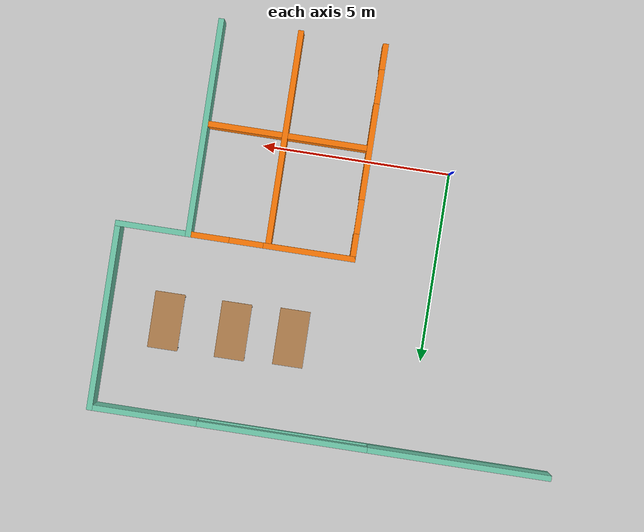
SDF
<sdf version="1.6">
 <world name="default">
  <model name="ground_plane">
   <static>1</static>
   <link name="link">
    <collision name="collision">
     <geometry><plane><normal>0 0 1</normal><size>100 100</size></plane></geometry>
     <surface><friction><ode><mu>100</mu><mu2>50</mu2></ode></friction></surface>
    </collision>
    <visual name="visual">
     <cast_shadows>0</cast_shadows>
     <geometry><plane><normal>0 0 1</normal><size>100 100</size></plane></geometry>
     <material>
      <script><uri>file://media/materials/scripts/gazebo.material</uri><name>Gazebo/Grey</name></script>
     </material>
    </visual>
   </link>
  </model>
  <model name="Building">
   <link name="Wall_11">
    <pose>5.14158 0.068309 0 0 -0 1.5708</pose>
    <visual name="Wall_11_Visual">
     <pose>0 0 1.25 0 -0 0</pose>
     <geometry><box><size>5.75 0.15 2.5</size></box></geometry>
     <material>
      <script><uri>file://media/materials/scripts/gazebo.material</uri><name>Gazebo/Grey</name></script>
      <ambient>0.435294 0.796078 0.67451 1</ambient>
      <shader type="pixel"/>
      <diffuse>0.7 0.7 0.7 1</diffuse>
      <specular>0.01 0.01 0.01 1</specular>
      <emissive>0 0 0 1</emissive>
     </material>
     <meta><layer>0</layer></meta>
    </visual>
    <collision name="Wall_11_Collision">
     <pose>0 0 1.25 0 -0 0</pose>
     <geometry><box><size>5.75 0.15 2.5</size></box></geometry>
     <surface>
      <friction>
       <ode><mu>1</mu><mu2>1</mu2><fdir1>0 0 0</fdir1><slip1>0</slip1><slip2>0</slip2></ode>
       <torsional>
        <coefficient>1</coefficient>
        <patch_radius>0</patch_radius>
        <surface_radius>0</surface_radius>
        <use_patch_radius>1</use_patch_radius>
        <ode><slip>0</slip></ode>
       </torsional>
      </friction>
      <bounce><restitution_coefficient>0</restitution_coefficient><threshold>1e+06</threshold></bounce>
      <contact>
       <collide_without_contact>0</collide_without_contact>
       <collide_without_contact_bitmask>1</collide_without_contact_bitmask>
       <collide_bitmask>1</collide_bitmask>
       <ode>
        <soft_cfm>0</soft_cfm>
        <soft_erp>0.2</soft_erp>
        <kp>1e+13</kp>
        <kd>1</kd>
        <max_vel>0.01</max_vel>
        <min_depth>0</min_depth>
       </ode>
       <bullet>
        <split_impulse>1</split_impulse>
        <split_impulse_penetration_threshold>-0.01</split_impulse_penetration_threshold>
        <soft_cfm>0</soft_cfm>
        <soft_erp>0.2</soft_erp>
        <kp>1e+13</kp>
        <kd>1</kd>
       </bullet>
      </contact>
     </surface>
    </collision>
   </link>
   <link name="Wall_12">
    <pose>6.06658 2.86831 0 0 -0 0</pose>
    <visual name="Wall_12_Visual">
     <pose>0 0 1.25 0 -0 0</pose>
     <geometry><box><size>2 0.15 2.5</size></box></geometry>
     <material>
      <script><uri>file://media/materials/scripts/gazebo.material</uri><name>Gazebo/Grey</name></script>
      <ambient>0.435294 0.796078 0.67451 1</ambient>
      <shader type="pixel"/>
      <diffuse>0.7 0.7 0.7 1</diffuse>
      <specular>0.01 0.01 0.01 1</specular>
      <emissive>0 0 0 1</emissive>
     </material>
     <meta><layer>0</layer></meta>
    </visual>
    <collision name="Wall_12_Collision">
     <pose>0 0 1.25 0 -0 0</pose>
     <geometry><box><size>2 0.15 2.5</size></box></geometry>
     <surface>
      <friction>
       <ode><mu>1</mu><mu2>1</mu2><fdir1>0 0 0</fdir1><slip1>0</slip1><slip2>0</slip2></ode>
       <torsional>
        <coefficient>1</coefficient>
        <patch_radius>0</patch_radius>
        <surface_radius>0</surface_radius>
        <use_patch_radius>1</use_patch_radius>
        <ode><slip>0</slip></ode>
       </torsional>
      </friction>
      <bounce><restitution_coefficient>0</restitution_coefficient><threshold>1e+06</threshold></bounce>
      <contact>
       <collide_without_contact>0</collide_without_contact>
       <collide_without_contact_bitmask>1</collide_without_contact_bitmask>
       <collide_bitmask>1</collide_bitmask>
       <ode>
        <soft_cfm>0</soft_cfm>
        <soft_erp>0.2</soft_erp>
        <kp>1e+13</kp>
        <kd>1</kd>
        <max_vel>0.01</max_vel>
        <min_depth>0</min_depth>
       </ode>
       <bullet>
        <split_impulse>1</split_impulse>
        <split_impulse_penetration_threshold>-0.01</split_impulse_penetration_threshold>
        <soft_cfm>0</soft_cfm>
        <soft_erp>0.2</soft_erp>
        <kp>1e+13</kp>
        <kd>1</kd>
       </bullet>
      </contact>
     </surface>
    </collision>
   </link>
   <link name="Wall_13">
    <pose>6.99158 5.29331 0 0 -0 1.5708</pose>
    <visual name="Wall_13_Visual">
     <pose>0 0 1.25 0 -0 0</pose>
     <geometry><box><size>5 0.15 2.5</size></box></geometry>
     <material>
      <script><uri>file://media/materials/scripts/gazebo.material</uri><name>Gazebo/Grey</name></script>
      <ambient>0.435294 0.796078 0.67451 1</ambient>
      <shader type="pixel"/>
      <diffuse>0.7 0.7 0.7 1</diffuse>
      <specular>0.01 0.01 0.01 1</specular>
      <emissive>0 0 0 1</emissive>
     </material>
     <meta><layer>0</layer></meta>
    </visual>
    <collision name="Wall_13_Collision">
     <pose>0 0 1.25 0 -0 0</pose>
     <geometry><box><size>5 0.15 2.5</size></box></geometry>
     <surface>
      <friction>
       <ode><mu>1</mu><mu2>1</mu2><fdir1>0 0 0</fdir1><slip1>0</slip1><slip2>0</slip2></ode>
       <torsional>
        <coefficient>1</coefficient>
        <patch_radius>0</patch_radius>
        <surface_radius>0</surface_radius>
        <use_patch_radius>1</use_patch_radius>
        <ode><slip>0</slip></ode>
       </torsional>
      </friction>
      <bounce><restitution_coefficient>0</restitution_coefficient><threshold>1e+06</threshold></bounce>
      <contact>
       <collide_without_contact>0</collide_without_contact>
       <collide_without_contact_bitmask>1</collide_without_contact_bitmask>
       <collide_bitmask>1</collide_bitmask>
       <ode>
        <soft_cfm>0</soft_cfm>
        <soft_erp>0.2</soft_erp>
        <kp>1e+13</kp>
        <kd>1</kd>
        <max_vel>0.01</max_vel>
        <min_depth>0</min_depth>
       </ode>
       <bullet>
        <split_impulse>1</split_impulse>
        <split_impulse_penetration_threshold>-0.01</split_impulse_penetration_threshold>
        <soft_cfm>0</soft_cfm>
        <soft_erp>0.2</soft_erp>
        <kp>1e+13</kp>
        <kd>1</kd>
       </bullet>
      </contact>
     </surface>
    </collision>
   </link>
   <link name="Wall_14">
    <pose>0.941578 7.71831 0 0 -0 3.14159</pose>
    <visual name="Wall_14_Visual_0">
     <pose>-4.67981 0 1.25 0 -0 0</pose>
     <geometry><box><size>2.89038 0.15 2.5</size></box></geometry>
     <material>
      <script><uri>file://media/materials/scripts/gazebo.material</uri><name>Gazebo/Grey</name></script>
      <ambient>0.435294 0.796078 0.67451 1</ambient>
      <shader type="pixel"/>
      <diffuse>0.7 0.7 0.7 1</diffuse>
      <specular>0.01 0.01 0.01 1</specular>
      <emissive>0 0 0 1</emissive>
     </material>
     <meta><layer>0</layer></meta>
    </visual>
    <visual name="Wall_14_Visual_1">
     <pose>1.44519 0 0.25 0 -0 0</pose>
     <geometry><box><size>9.35962 0.15 0.5</size></box></geometry>
     <material>
      <script><uri>file://media/materials/scripts/gazebo.material</uri><name>Gazebo/Grey</name></script>
      <ambient>0.435294 0.796078 0.67451 1</ambient>
      <shader type="pixel"/>
      <diffuse>0.7 0.7 0.7 1</diffuse>
      <specular>0.01 0.01 0.01 1</specular>
      <emissive>0 0 0 1</emissive>
     </material>
     <meta><layer>0</layer></meta>
    </visual>
    <visual name="Wall_14_Visual_2">
     <pose>3.69519 0 1.5 0 -0 0</pose>
     <geometry><box><size>4.85962 0.15 2</size></box></geometry>
     <material>
      <script><uri>file://media/materials/scripts/gazebo.material</uri><name>Gazebo/Grey</name></script>
      <ambient>0.435294 0.796078 0.67451 1</ambient>
      <shader type="pixel"/>
      <diffuse>0.7 0.7 0.7 1</diffuse>
      <specular>0.01 0.01 0.01 1</specular>
      <emissive>0 0 0 1</emissive>
     </material>
     <meta><layer>0</layer></meta>
    </visual>
    <visual name="Wall_14_Visual_3">
     <pose>-0.984623 0 2.1 0 -0 0</pose>
     <geometry><box><size>4.5 0.15 0.8</size></box></geometry>
     <material>
      <script><uri>file://media/materials/scripts/gazebo.material</uri><name>Gazebo/Grey</name></script>
      <ambient>0.435294 0.796078 0.67451 1</ambient>
      <shader type="pixel"/>
      <diffuse>0.7 0.7 0.7 1</diffuse>
      <specular>0.01 0.01 0.01 1</specular>
      <emissive>0 0 0 1</emissive>
     </material>
     <meta><layer>0</layer></meta>
    </visual>
    <collision name="Wall_14_Collision_0">
     <pose>-4.67981 0 1.25 0 -0 0</pose>
     <geometry><box><size>2.89038 0.15 2.5</size></box></geometry>
     <surface>
      <friction>
       <ode><mu>1</mu><mu2>1</mu2><fdir1>0 0 0</fdir1><slip1>0</slip1><slip2>0</slip2></ode>
       <torsional>
        <coefficient>1</coefficient>
        <patch_radius>0</patch_radius>
        <surface_radius>0</surface_radius>
        <use_patch_radius>1</use_patch_radius>
        <ode><slip>0</slip></ode>
       </torsional>
      </friction>
      <bounce><restitution_coefficient>0</restitution_coefficient><threshold>1e+06</threshold></bounce>
      <contact>
       <collide_without_contact>0</collide_without_contact>
       <collide_without_contact_bitmask>1</collide_without_contact_bitmask>
       <collide_bitmask>1</collide_bitmask>
       <ode>
        <soft_cfm>0</soft_cfm>
        <soft_erp>0.2</soft_erp>
        <kp>1e+13</kp>
        <kd>1</kd>
        <max_vel>0.01</max_vel>
        <min_depth>0</min_depth>
       </ode>
       <bullet>
        <split_impulse>1</split_impulse>
        <split_impulse_penetration_threshold>-0.01</split_impulse_penetration_threshold>
        <soft_cfm>0</soft_cfm>
        <soft_erp>0.2</soft_erp>
        <kp>1e+13</kp>
        <kd>1</kd>
       </bullet>
      </contact>
     </surface>
    </collision>
    <collision name="Wall_14_Collision_1">
     <pose>1.44519 0 0.25 0 -0 0</pose>
     <geometry><box><size>9.35962 0.15 0.5</size></box></geometry>
     <surface>
      <friction>
       <ode><mu>1</mu><mu2>1</mu2><fdir1>0 0 0</fdir1><slip1>0</slip1><slip2>0</slip2></ode>
       <torsional>
        <coefficient>1</coefficient>
        <patch_radius>0</patch_radius>
        <surface_radius>0</surface_radius>
        <use_patch_radius>1</use_patch_radius>
        <ode><slip>0</slip></ode>
       </torsional>
      </friction>
      <bounce><restitution_coefficient>0</restitution_coefficient><threshold>1e+06</threshold></bounce>
      <contact>
       <collide_without_contact>0</collide_without_contact>
       <collide_without_contact_bitmask>1</collide_without_contact_bitmask>
       <collide_bitmask>1</collide_bitmask>
       <ode>
        <soft_cfm>0</soft_cfm>
        <soft_erp>0.2</soft_erp>
        <kp>1e+13</kp>
        <kd>1</kd>
        <max_vel>0.01</max_vel>
        <min_depth>0</min_depth>
       </ode>
       <bullet>
        <split_impulse>1</split_impulse>
        <split_impulse_penetration_threshold>-0.01</split_impulse_penetration_threshold>
        <soft_cfm>0</soft_cfm>
        <soft_erp>0.2</soft_erp>
        <kp>1e+13</kp>
        <kd>1</kd>
       </bullet>
      </contact>
     </surface>
    </collision>
    <collision name="Wall_14_Collision_2">
     <pose>3.69519 0 1.5 0 -0 0</pose>
     <geometry><box><size>4.85962 0.15 2</size></box></geometry>
     <surface>
      <friction>
       <ode><mu>1</mu><mu2>1</mu2><fdir1>0 0 0</fdir1><slip1>0</slip1><slip2>0</slip2></ode>
       <torsional>
        <coefficient>1</coefficient>
        <patch_radius>0</patch_radius>
        <surface_radius>0</surface_radius>
        <use_patch_radius>1</use_patch_radius>
        <ode><slip>0</slip></ode>
       </torsional>
      </friction>
      <bounce><restitution_coefficient>0</restitution_coefficient><threshold>1e+06</threshold></bounce>
      <contact>
       <collide_without_contact>0</collide_without_contact>
       <collide_without_contact_bitmask>1</collide_without_contact_bitmask>
       <collide_bitmask>1</collide_bitmask>
       <ode>
        <soft_cfm>0</soft_cfm>
        <soft_erp>0.2</soft_erp>
        <kp>1e+13</kp>
        <kd>1</kd>
        <max_vel>0.01</max_vel>
        <min_depth>0</min_depth>
       </ode>
       <bullet>
        <split_impulse>1</split_impulse>
        <split_impulse_penetration_threshold>-0.01</split_impulse_penetration_threshold>
        <soft_cfm>0</soft_cfm>
        <soft_erp>0.2</soft_erp>
        <kp>1e+13</kp>
        <kd>1</kd>
       </bullet>
      </contact>
     </surface>
    </collision>
    <collision name="Wall_14_Collision_3">
     <pose>-0.984623 0 2.1 0 -0 0</pose>
     <geometry><box><size>4.5 0.15 0.8</size></box></geometry>
     <surface>
      <friction>
       <ode><mu>1</mu><mu2>1</mu2><fdir1>0 0 0</fdir1><slip1>0</slip1><slip2>0</slip2></ode>
       <torsional>
        <coefficient>1</coefficient>
        <patch_radius>0</patch_radius>
        <surface_radius>0</surface_radius>
        <use_patch_radius>1</use_patch_radius>
        <ode><slip>0</slip></ode>
       </torsional>
      </friction>
      <bounce><restitution_coefficient>0</restitution_coefficient><threshold>1e+06</threshold></bounce>
      <contact>
       <collide_without_contact>0</collide_without_contact>
       <collide_without_contact_bitmask>1</collide_without_contact_bitmask>
       <collide_bitmask>1</collide_bitmask>
       <ode>
        <soft_cfm>0</soft_cfm>
        <soft_erp>0.2</soft_erp>
        <kp>1e+13</kp>
        <kd>1</kd>
        <max_vel>0.01</max_vel>
        <min_depth>0</min_depth>
       </ode>
       <bullet>
        <split_impulse>1</split_impulse>
        <split_impulse_penetration_threshold>-0.01</split_impulse_penetration_threshold>
        <soft_cfm>0</soft_cfm>
        <soft_erp>0.2</soft_erp>
        <kp>1e+13</kp>
        <kd>1</kd>
       </bullet>
      </contact>
     </surface>
    </collision>
   </link>
   <link name="Wall_255">
    <pose>0.809307 0.06207 0 0 -0 1.5708</pose>
    <visual name="Wall_255_Visual_0">
     <pose>-2.53553 0 1.25 0 -0 0</pose>
     <geometry><box><size>0.678944 0.15 2.5</size></box></geometry>
     <material>
      <script><uri>file://media/materials/scripts/gazebo.material</uri><name>Gazebo/Grey</name></script>
      <ambient>0.996078 0.47451 0.0196078 1</ambient>
      <shader type="pixel"/>
      <diffuse>0.7 0.7 0.7 1</diffuse>
      <specular>0.01 0.01 0.01 1</specular>
      <emissive>0 0 0 1</emissive>
     </material>
     <meta><layer>0</layer></meta>
    </visual>
    <visual name="Wall_255_Visual_1">
     <pose>-0.032303 0 1.25 0 -0 0</pose>
     <geometry><box><size>2.52751 0.15 2.5</size></box></geometry>
     <material>
      <script><uri>file://media/materials/scripts/gazebo.material</uri><name>Gazebo/Grey</name></script>
      <ambient>0.996078 0.47451 0.0196078 1</ambient>
      <shader type="pixel"/>
      <diffuse>0.7 0.7 0.7 1</diffuse>
      <specular>0.01 0.01 0.01 1</specular>
      <emissive>0 0 0 1</emissive>
     </material>
     <meta><layer>0</layer></meta>
    </visual>
    <visual name="Wall_255_Visual_2">
     <pose>2.50322 0 1.25 0 -0 0</pose>
     <geometry><box><size>0.743551 0.15 2.5</size></box></geometry>
     <material>
      <script><uri>file://media/materials/scripts/gazebo.material</uri><name>Gazebo/Grey</name></script>
      <ambient>0.996078 0.47451 0.0196078 1</ambient>
      <shader type="pixel"/>
      <diffuse>0.7 0.7 0.7 1</diffuse>
      <specular>0.01 0.01 0.01 1</specular>
      <emissive>0 0 0 1</emissive>
     </material>
     <meta><layer>0</layer></meta>
    </visual>
    <visual name="Wall_255_Visual_3">
     <pose>-1.74606 0 2.25 0 -0 0</pose>
     <geometry><box><size>0.9 0.15 0.5</size></box></geometry>
     <material>
      <script><uri>file://media/materials/scripts/gazebo.material</uri><name>Gazebo/Grey</name></script>
      <ambient>0.996078 0.47451 0.0196078 1</ambient>
      <shader type="pixel"/>
      <diffuse>0.7 0.7 0.7 1</diffuse>
      <specular>0.01 0.01 0.01 1</specular>
      <emissive>0 0 0 1</emissive>
     </material>
     <meta><layer>0</layer></meta>
    </visual>
    <visual name="Wall_255_Visual_4">
     <pose>1.68145 0 2.25 0 -0 0</pose>
     <geometry><box><size>0.9 0.15 0.5</size></box></geometry>
     <material>
      <script><uri>file://media/materials/scripts/gazebo.material</uri><name>Gazebo/Grey</name></script>
      <ambient>0.996078 0.47451 0.0196078 1</ambient>
      <shader type="pixel"/>
      <diffuse>0.7 0.7 0.7 1</diffuse>
      <specular>0.01 0.01 0.01 1</specular>
      <emissive>0 0 0 1</emissive>
     </material>
     <meta><layer>0</layer></meta>
    </visual>
    <collision name="Wall_255_Collision_0">
     <pose>-2.53553 0 1.25 0 -0 0</pose>
     <geometry><box><size>0.678944 0.15 2.5</size></box></geometry>
     <surface>
      <friction>
       <ode><mu>1</mu><mu2>1</mu2><fdir1>0 0 0</fdir1><slip1>0</slip1><slip2>0</slip2></ode>
       <torsional>
        <coefficient>1</coefficient>
        <patch_radius>0</patch_radius>
        <surface_radius>0</surface_radius>
        <use_patch_radius>1</use_patch_radius>
        <ode><slip>0</slip></ode>
       </torsional>
      </friction>
      <bounce><restitution_coefficient>0</restitution_coefficient><threshold>1e+06</threshold></bounce>
      <contact>
       <collide_without_contact>0</collide_without_contact>
       <collide_without_contact_bitmask>1</collide_without_contact_bitmask>
       <collide_bitmask>1</collide_bitmask>
       <ode>
        <soft_cfm>0</soft_cfm>
        <soft_erp>0.2</soft_erp>
        <kp>1e+13</kp>
        <kd>1</kd>
        <max_vel>0.01</max_vel>
        <min_depth>0</min_depth>
       </ode>
       <bullet>
        <split_impulse>1</split_impulse>
        <split_impulse_penetration_threshold>-0.01</split_impulse_penetration_threshold>
        <soft_cfm>0</soft_cfm>
        <soft_erp>0.2</soft_erp>
        <kp>1e+13</kp>
        <kd>1</kd>
       </bullet>
      </contact>
     </surface>
    </collision>
    <collision name="Wall_255_Collision_2">
     <pose>2.50322 0 1.25 0 -0 0</pose>
     <geometry><box><size>0.743551 0.15 2.5</size></box></geometry>
     <surface>
      <friction>
       <ode><mu>1</mu><mu2>1</mu2><fdir1>0 0 0</fdir1><slip1>0</slip1><slip2>0</slip2></ode>
       <torsional>
        <coefficient>1</coefficient>
        <patch_radius>0</patch_radius>
        <surface_radius>0</surface_radius>
        <use_patch_radius>1</use_patch_radius>
        <ode><slip>0</slip></ode>
       </torsional>
      </friction>
      <bounce><restitution_coefficient>0</restitution_coefficient><threshold>1e+06</threshold></bounce>
      <contact>
       <collide_without_contact>0</collide_without_contact>
       <collide_without_contact_bitmask>1</collide_without_contact_bitmask>
       <collide_bitmask>1</collide_bitmask>
       <ode>
        <soft_cfm>0</soft_cfm>
        <soft_erp>0.2</soft_erp>
        <kp>1e+13</kp>
        <kd>1</kd>
        <max_vel>0.01</max_vel>
        <min_depth>0</min_depth>
       </ode>
       <bullet>
        <split_impulse>1</split_impulse>
        <split_impulse_penetration_threshold>-0.01</split_impulse_penetration_threshold>
        <soft_cfm>0</soft_cfm>
        <soft_erp>0.2</soft_erp>
        <kp>1e+13</kp>
        <kd>1</kd>
       </bullet>
      </contact>
     </surface>
    </collision>
    <collision name="Wall_255_Collision_1">
     <pose>-0.032303 0 1.25 0 -0 0</pose>
     <geometry><box><size>2.52751 0.15 2.5</size></box></geometry>
     <surface>
      <friction>
       <ode><mu>1</mu><mu2>1</mu2><fdir1>0 0 0</fdir1><slip1>0</slip1><slip2>0</slip2></ode>
       <torsional>
        <coefficient>1</coefficient>
        <patch_radius>0</patch_radius>
        <surface_radius>0</surface_radius>
        <use_patch_radius>1</use_patch_radius>
        <ode><slip>0</slip></ode>
       </torsional>
      </friction>
      <bounce><restitution_coefficient>0</restitution_coefficient><threshold>1e+06</threshold></bounce>
      <contact>
       <collide_without_contact>0</collide_without_contact>
       <collide_without_contact_bitmask>1</collide_without_contact_bitmask>
       <collide_bitmask>1</collide_bitmask>
       <ode>
        <soft_cfm>0</soft_cfm>
        <soft_erp>0.2</soft_erp>
        <kp>1e+13</kp>
        <kd>1</kd>
        <max_vel>0.01</max_vel>
        <min_depth>0</min_depth>
       </ode>
       <bullet>
        <split_impulse>1</split_impulse>
        <split_impulse_penetration_threshold>-0.01</split_impulse_penetration_threshold>
        <soft_cfm>0</soft_cfm>
        <soft_erp>0.2</soft_erp>
        <kp>1e+13</kp>
        <kd>1</kd>
       </bullet>
      </contact>
     </surface>
    </collision>
    <collision name="Wall_255_Collision_3">
     <pose>-1.74606 0 2.25 0 -0 0</pose>
     <geometry><box><size>0.9 0.15 0.5</size></box></geometry>
     <surface>
      <friction>
       <ode><mu>1</mu><mu2>1</mu2><fdir1>0 0 0</fdir1><slip1>0</slip1><slip2>0</slip2></ode>
       <torsional>
        <coefficient>1</coefficient>
        <patch_radius>0</patch_radius>
        <surface_radius>0</surface_radius>
        <use_patch_radius>1</use_patch_radius>
        <ode><slip>0</slip></ode>
       </torsional>
      </friction>
      <bounce><restitution_coefficient>0</restitution_coefficient><threshold>1e+06</threshold></bounce>
      <contact>
       <collide_without_contact>0</collide_without_contact>
       <collide_without_contact_bitmask>1</collide_without_contact_bitmask>
       <collide_bitmask>1</collide_bitmask>
       <ode>
        <soft_cfm>0</soft_cfm>
        <soft_erp>0.2</soft_erp>
        <kp>1e+13</kp>
        <kd>1</kd>
        <max_vel>0.01</max_vel>
        <min_depth>0</min_depth>
       </ode>
       <bullet>
        <split_impulse>1</split_impulse>
        <split_impulse_penetration_threshold>-0.01</split_impulse_penetration_threshold>
        <soft_cfm>0</soft_cfm>
        <soft_erp>0.2</soft_erp>
        <kp>1e+13</kp>
        <kd>1</kd>
       </bullet>
      </contact>
     </surface>
    </collision>
    <collision name="Wall_255_Collision_4">
     <pose>1.68145 0 2.25 0 -0 0</pose>
     <geometry><box><size>0.9 0.15 0.5</size></box></geometry>
     <surface>
      <friction>
       <ode><mu>1</mu><mu2>1</mu2><fdir1>0 0 0</fdir1><slip1>0</slip1><slip2>0</slip2></ode>
       <torsional>
        <coefficient>1</coefficient>
        <patch_radius>0</patch_radius>
        <surface_radius>0</surface_radius>
        <use_patch_radius>1</use_patch_radius>
        <ode><slip>0</slip></ode>
       </torsional>
      </friction>
      <bounce><restitution_coefficient>0</restitution_coefficient><threshold>1e+06</threshold></bounce>
      <contact>
       <collide_without_contact>0</collide_without_contact>
       <collide_without_contact_bitmask>1</collide_without_contact_bitmask>
       <collide_bitmask>1</collide_bitmask>
       <ode>
        <soft_cfm>0</soft_cfm>
        <soft_erp>0.2</soft_erp>
        <kp>1e+13</kp>
        <kd>1</kd>
        <max_vel>0.01</max_vel>
        <min_depth>0</min_depth>
       </ode>
       <bullet>
        <split_impulse>1</split_impulse>
        <split_impulse_penetration_threshold>-0.01</split_impulse_penetration_threshold>
        <soft_cfm>0</soft_cfm>
        <soft_erp>0.2</soft_erp>
        <kp>1e+13</kp>
        <kd>1</kd>
       </bullet>
      </contact>
     </surface>
    </collision>
   </link>
   <link name="Wall_256">
    <pose>2.97544 2.86519 0 0 -0 0.00144</pose>
    <visual name="Wall_256_Visual_0">
     <pose>-1.02435 0 1.25 0 -0 0</pose>
     <geometry><box><size>2.43357 0.15 2.5</size></box></geometry>
     <material>
      <script><uri>file://media/materials/scripts/gazebo.material</uri><name>Gazebo/Grey</name></script>
      <ambient>0.996078 0.47451 0.0196078 1</ambient>
      <shader type="pixel"/>
      <diffuse>0.7 0.7 0.7 1</diffuse>
      <specular>0.01 0.01 0.01 1</specular>
      <emissive>0 0 0 1</emissive>
     </material>
     <meta><layer>0</layer></meta>
    </visual>
    <visual name="Wall_256_Visual_1">
     <pose>1.66679 0 1.25 0 -0 0</pose>
     <geometry><box><size>1.1487 0.15 2.5</size></box></geometry>
     <material>
      <script><uri>file://media/materials/scripts/gazebo.material</uri><name>Gazebo/Grey</name></script>
      <ambient>0.996078 0.47451 0.0196078 1</ambient>
      <shader type="pixel"/>
      <diffuse>0.7 0.7 0.7 1</diffuse>
      <specular>0.01 0.01 0.01 1</specular>
      <emissive>0 0 0 1</emissive>
     </material>
     <meta><layer>0</layer></meta>
    </visual>
    <visual name="Wall_256_Visual_2">
     <pose>0.642434 0 2.25 0 -0 0</pose>
     <geometry><box><size>0.9 0.15 0.5</size></box></geometry>
     <material>
      <script><uri>file://media/materials/scripts/gazebo.material</uri><name>Gazebo/Grey</name></script>
      <ambient>0.996078 0.47451 0.0196078 1</ambient>
      <shader type="pixel"/>
      <diffuse>0.7 0.7 0.7 1</diffuse>
      <specular>0.01 0.01 0.01 1</specular>
      <emissive>0 0 0 1</emissive>
     </material>
     <meta><layer>0</layer></meta>
    </visual>
    <collision name="Wall_256_Collision_0">
     <pose>-1.02435 0 1.25 0 -0 0</pose>
     <geometry><box><size>2.43357 0.15 2.5</size></box></geometry>
     <surface>
      <friction>
       <ode><mu>1</mu><mu2>1</mu2><fdir1>0 0 0</fdir1><slip1>0</slip1><slip2>0</slip2></ode>
       <torsional>
        <coefficient>1</coefficient>
        <patch_radius>0</patch_radius>
        <surface_radius>0</surface_radius>
        <use_patch_radius>1</use_patch_radius>
        <ode><slip>0</slip></ode>
       </torsional>
      </friction>
      <bounce><restitution_coefficient>0</restitution_coefficient><threshold>1e+06</threshold></bounce>
      <contact>
       <collide_without_contact>0</collide_without_contact>
       <collide_without_contact_bitmask>1</collide_without_contact_bitmask>
       <collide_bitmask>1</collide_bitmask>
       <ode>
        <soft_cfm>0</soft_cfm>
        <soft_erp>0.2</soft_erp>
        <kp>1e+13</kp>
        <kd>1</kd>
        <max_vel>0.01</max_vel>
        <min_depth>0</min_depth>
       </ode>
       <bullet>
        <split_impulse>1</split_impulse>
        <split_impulse_penetration_threshold>-0.01</split_impulse_penetration_threshold>
        <soft_cfm>0</soft_cfm>
        <soft_erp>0.2</soft_erp>
        <kp>1e+13</kp>
        <kd>1</kd>
       </bullet>
      </contact>
     </surface>
    </collision>
    <collision name="Wall_256_Collision_1">
     <pose>1.66679 0 1.25 0 -0 0</pose>
     <geometry><box><size>1.1487 0.15 2.5</size></box></geometry>
     <surface>
      <friction>
       <ode><mu>1</mu><mu2>1</mu2><fdir1>0 0 0</fdir1><slip1>0</slip1><slip2>0</slip2></ode>
       <torsional>
        <coefficient>1</coefficient>
        <patch_radius>0</patch_radius>
        <surface_radius>0</surface_radius>
        <use_patch_radius>1</use_patch_radius>
        <ode><slip>0</slip></ode>
       </torsional>
      </friction>
      <bounce><restitution_coefficient>0</restitution_coefficient><threshold>1e+06</threshold></bounce>
      <contact>
       <collide_without_contact>0</collide_without_contact>
       <collide_without_contact_bitmask>1</collide_without_contact_bitmask>
       <collide_bitmask>1</collide_bitmask>
       <ode>
        <soft_cfm>0</soft_cfm>
        <soft_erp>0.2</soft_erp>
        <kp>1e+13</kp>
        <kd>1</kd>
        <max_vel>0.01</max_vel>
        <min_depth>0</min_depth>
       </ode>
       <bullet>
        <split_impulse>1</split_impulse>
        <split_impulse_penetration_threshold>-0.01</split_impulse_penetration_threshold>
        <soft_cfm>0</soft_cfm>
        <soft_erp>0.2</soft_erp>
        <kp>1e+13</kp>
        <kd>1</kd>
       </bullet>
      </contact>
     </surface>
    </collision>
    <collision name="Wall_256_Collision_2">
     <pose>0.642434 0 2.25 0 -0 0</pose>
     <geometry><box><size>0.9 0.15 0.5</size></box></geometry>
     <surface>
      <friction>
       <ode><mu>1</mu><mu2>1</mu2><fdir1>0 0 0</fdir1><slip1>0</slip1><slip2>0</slip2></ode>
       <torsional>
        <coefficient>1</coefficient>
        <patch_radius>0</patch_radius>
        <surface_radius>0</surface_radius>
        <use_patch_radius>1</use_patch_radius>
        <ode><slip>0</slip></ode>
       </torsional>
      </friction>
      <bounce><restitution_coefficient>0</restitution_coefficient><threshold>1e+06</threshold></bounce>
      <contact>
       <collide_without_contact>0</collide_without_contact>
       <collide_without_contact_bitmask>1</collide_without_contact_bitmask>
       <collide_bitmask>1</collide_bitmask>
       <ode>
        <soft_cfm>0</soft_cfm>
        <soft_erp>0.2</soft_erp>
        <kp>1e+13</kp>
        <kd>1</kd>
        <max_vel>0.01</max_vel>
        <min_depth>0</min_depth>
       </ode>
       <bullet>
        <split_impulse>1</split_impulse>
        <split_impulse_penetration_threshold>-0.01</split_impulse_penetration_threshold>
        <soft_cfm>0</soft_cfm>
        <soft_erp>0.2</soft_erp>
        <kp>1e+13</kp>
        <kd>1</kd>
       </bullet>
      </contact>
     </surface>
    </collision>
   </link>
   <link name="Wall_259">
    <pose>3.04316 0.057951 0 0 -0 1.5708</pose>
    <visual name="Wall_259_Visual">
     <pose>0 0 1.25 0 -0 0</pose>
     <geometry><box><size>5.75 0.15 2.5</size></box></geometry>
     <material>
      <script><uri>file://media/materials/scripts/gazebo.material</uri><name>Gazebo/Grey</name></script>
      <ambient>0.996078 0.47451 0.0196078 1</ambient>
      <shader type="pixel"/>
      <diffuse>0.7 0.7 0.7 1</diffuse>
      <specular>0.01 0.01 0.01 1</specular>
      <emissive>0 0 0 1</emissive>
     </material>
     <meta><layer>0</layer></meta>
    </visual>
    <collision name="Wall_259_Collision">
     <pose>0 0 1.25 0 -0 0</pose>
     <geometry><box><size>5.75 0.15 2.5</size></box></geometry>
     <surface>
      <friction>
       <ode><mu>1</mu><mu2>1</mu2><fdir1>0 0 0</fdir1><slip1>0</slip1><slip2>0</slip2></ode>
       <torsional>
        <coefficient>1</coefficient>
        <patch_radius>0</patch_radius>
        <surface_radius>0</surface_radius>
        <use_patch_radius>1</use_patch_radius>
        <ode><slip>0</slip></ode>
       </torsional>
      </friction>
      <bounce><restitution_coefficient>0</restitution_coefficient><threshold>1e+06</threshold></bounce>
      <contact>
       <collide_without_contact>0</collide_without_contact>
       <collide_without_contact_bitmask>1</collide_without_contact_bitmask>
       <collide_bitmask>1</collide_bitmask>
       <ode>
        <soft_cfm>0</soft_cfm>
        <soft_erp>0.2</soft_erp>
        <kp>1e+13</kp>
        <kd>1</kd>
        <max_vel>0.01</max_vel>
        <min_depth>0</min_depth>
       </ode>
       <bullet>
        <split_impulse>1</split_impulse>
        <split_impulse_penetration_threshold>-0.01</split_impulse_penetration_threshold>
        <soft_cfm>0</soft_cfm>
        <soft_erp>0.2</soft_erp>
        <kp>1e+13</kp>
        <kd>1</kd>
       </bullet>
      </contact>
     </surface>
    </collision>
   </link>
   <link name="Wall_264">
    <pose>4.1082 -0.049164 0 0 -0 3.14159</pose>
    <visual name="Wall_264_Visual">
     <pose>0 0 1.25 0 -0 0</pose>
     <geometry><box><size>2 0.15 2.5</size></box></geometry>
     <material>
      <script><uri>file://media/materials/scripts/gazebo.material</uri><name>Gazebo/Grey</name></script>
      <ambient>0.996078 0.47451 0.0196078 1</ambient>
      <shader type="pixel"/>
      <diffuse>0.7 0.7 0.7 1</diffuse>
      <specular>0.01 0.01 0.01 1</specular>
      <emissive>0 0 0 1</emissive>
     </material>
     <meta><layer>0</layer></meta>
    </visual>
    <collision name="Wall_264_Collision">
     <pose>0 0 1.25 0 -0 0</pose>
     <geometry><box><size>2 0.15 2.5</size></box></geometry>
     <surface>
      <friction>
       <ode><mu>1</mu><mu2>1</mu2><fdir1>0 0 0</fdir1><slip1>0</slip1><slip2>0</slip2></ode>
       <torsional>
        <coefficient>1</coefficient>
        <patch_radius>0</patch_radius>
        <surface_radius>0</surface_radius>
        <use_patch_radius>1</use_patch_radius>
        <ode><slip>0</slip></ode>
       </torsional>
      </friction>
      <bounce><restitution_coefficient>0</restitution_coefficient><threshold>1e+06</threshold></bounce>
      <contact>
       <collide_without_contact>0</collide_without_contact>
       <collide_without_contact_bitmask>1</collide_without_contact_bitmask>
       <collide_bitmask>1</collide_bitmask>
       <ode>
        <soft_cfm>0</soft_cfm>
        <soft_erp>0.2</soft_erp>
        <kp>1e+13</kp>
        <kd>1</kd>
        <max_vel>0.01</max_vel>
        <min_depth>0</min_depth>
       </ode>
       <bullet>
        <split_impulse>1</split_impulse>
        <split_impulse_penetration_threshold>-0.01</split_impulse_penetration_threshold>
        <soft_cfm>0</soft_cfm>
        <soft_erp>0.2</soft_erp>
        <kp>1e+13</kp>
        <kd>1</kd>
       </bullet>
      </contact>
     </surface>
    </collision>
   </link>
   <link name="Wall_346">
    <pose>2.0082 -0.049164 0 0 -0 3.14159</pose>
    <visual name="Wall_346_Visual">
     <pose>0 0 1.25 0 -0 0</pose>
     <geometry><box><size>2.5 0.15 2.5</size></box></geometry>
     <material>
      <script><uri>file://media/materials/scripts/gazebo.material</uri><name>Gazebo/Grey</name></script>
      <ambient>0.996078 0.47451 0.0196078 1</ambient>
      <shader type="pixel"/>
      <diffuse>0.7 0.7 0.7 1</diffuse>
      <specular>0.01 0.01 0.01 1</specular>
      <emissive>0 0 0 1</emissive>
     </material>
     <meta><layer>0</layer></meta>
    </visual>
    <collision name="Wall_346_Collision">
     <pose>0 0 1.25 0 -0 0</pose>
     <geometry><box><size>2.5 0.15 2.5</size></box></geometry>
     <surface>
      <friction>
       <ode><mu>1</mu><mu2>1</mu2><fdir1>0 0 0</fdir1><slip1>0</slip1><slip2>0</slip2></ode>
       <torsional>
        <coefficient>1</coefficient>
        <patch_radius>0</patch_radius>
        <surface_radius>0</surface_radius>
        <use_patch_radius>1</use_patch_radius>
        <ode><slip>0</slip></ode>
       </torsional>
      </friction>
      <bounce><restitution_coefficient>0</restitution_coefficient><threshold>1e+06</threshold></bounce>
      <contact>
       <collide_without_contact>0</collide_without_contact>
       <collide_without_contact_bitmask>1</collide_without_contact_bitmask>
       <collide_bitmask>1</collide_bitmask>
       <ode>
        <soft_cfm>0</soft_cfm>
        <soft_erp>0.2</soft_erp>
        <kp>1e+13</kp>
        <kd>1</kd>
        <max_vel>0.01</max_vel>
        <min_depth>0</min_depth>
       </ode>
       <bullet>
        <split_impulse>1</split_impulse>
        <split_impulse_penetration_threshold>-0.01</split_impulse_penetration_threshold>
        <soft_cfm>0</soft_cfm>
        <soft_erp>0.2</soft_erp>
        <kp>1e+13</kp>
        <kd>1</kd>
       </bullet>
      </contact>
     </surface>
    </collision>
   </link>
   <static>1</static>
   <pose>1.39929 -0.252215 0 0 -0 0</pose>
  </model>
  <model name="table_clone">
   <static>1</static>
   <link name="link">
    <collision name="surface">
     <pose>0 0 1 0 -0 0</pose>
     <geometry><box><size>1.5 0.8 0.03</size></box></geometry>
     <surface><friction><ode><mu>0.6</mu><mu2>0.6</mu2></ode></friction></surface>
    </collision>
    <visual name="visual1">
     <pose>0 0 1 0 -0 0</pose>
     <geometry><box><size>1.5 0.8 0.03</size></box></geometry>
     <material>
      <script><uri>file://media/materials/scripts/gazebo.material</uri><name>Gazebo/Wood</name></script>
     </material>
    </visual>
    <collision name="front_left_leg">
     <pose>0.68 0.38 0.5 0 -0 0</pose>
     <geometry><cylinder><radius>0.02</radius><length>1</length></cylinder></geometry>
    </collision>
    <visual name="front_left_leg">
     <pose>0.68 0.38 0.5 0 -0 0</pose>
     <geometry><cylinder><radius>0.02</radius><length>1</length></cylinder></geometry>
     <material>
      <script><uri>file://media/materials/scripts/gazebo.material</uri><name>Gazebo/Grey</name></script>
     </material>
    </visual>
    <collision name="front_right_leg">
     <pose>0.68 -0.38 0.5 0 -0 0</pose>
     <geometry><cylinder><radius>0.02</radius><length>1</length></cylinder></geometry>
    </collision>
    <visual name="front_right_leg">
     <pose>0.68 -0.38 0.5 0 -0 0</pose>
     <geometry><cylinder><radius>0.02</radius><length>1</length></cylinder></geometry>
     <material>
      <script><uri>file://media/materials/scripts/gazebo.material</uri><name>Gazebo/Grey</name></script>
     </material>
    </visual>
    <collision name="back_right_leg">
     <pose>-0.68 -0.38 0.5 0 -0 0</pose>
     <geometry><cylinder><radius>0.02</radius><length>1</length></cylinder></geometry>
    </collision>
    <visual name="back_right_leg">
     <pose>-0.68 -0.38 0.5 0 -0 0</pose>
     <geometry><cylinder><radius>0.02</radius><length>1</length></cylinder></geometry>
     <material>
      <script><uri>file://media/materials/scripts/gazebo.material</uri><name>Gazebo/Grey</name></script>
     </material>
    </visual>
    <collision name="back_left_leg">
     <pose>-0.68 0.38 0.5 0 -0 0</pose>
     <geometry><cylinder><radius>0.02</radius><length>1</length></cylinder></geometry>
    </collision>
    <visual name="back_left_leg">
     <pose>-0.68 0.38 0.5 0 -0 0</pose>
     <geometry><cylinder><radius>0.02</radius><length>1</length></cylinder></geometry>
     <material>
      <script><uri>file://media/materials/scripts/gazebo.material</uri><name>Gazebo/Grey</name></script>
     </material>
    </visual>
   </link>
   <pose>6.79891 4.96925 0 0 0 -1.56708</pose>
  </model>
  <model name="table_clone_0">
   <static>1</static>
   <link name="link">
    <collision name="surface">
     <pose>0 0 1 0 -0 0</pose>
     <geometry><box><size>1.5 0.8 0.03</size></box></geometry>
     <surface><friction><ode><mu>0.6</mu><mu2>0.6</mu2></ode></friction></surface>
    </collision>
    <visual name="visual1">
     <pose>0 0 1 0 -0 0</pose>
     <geometry><box><size>1.5 0.8 0.03</size></box></geometry>
     <material>
      <script><uri>file://media/materials/scripts/gazebo.material</uri><name>Gazebo/Wood</name></script>
     </material>
    </visual>
    <collision name="front_left_leg">
     <pose>0.68 0.38 0.5 0 -0 0</pose>
     <geometry><cylinder><radius>0.02</radius><length>1</length></cylinder></geometry>
    </collision>
    <visual name="front_left_leg">
     <pose>0.68 0.38 0.5 0 -0 0</pose>
     <geometry><cylinder><radius>0.02</radius><length>1</length></cylinder></geometry>
     <material>
      <script><uri>file://media/materials/scripts/gazebo.material</uri><name>Gazebo/Grey</name></script>
     </material>
    </visual>
    <collision name="front_right_leg">
     <pose>0.68 -0.38 0.5 0 -0 0</pose>
     <geometry><cylinder><radius>0.02</radius><length>1</length></cylinder></geometry>
    </collision>
    <visual name="front_right_leg">
     <pose>0.68 -0.38 0.5 0 -0 0</pose>
     <geometry><cylinder><radius>0.02</radius><length>1</length></cylinder></geometry>
     <material>
      <script><uri>file://media/materials/scripts/gazebo.material</uri><name>Gazebo/Grey</name></script>
     </material>
    </visual>
    <collision name="back_right_leg">
     <pose>-0.68 -0.38 0.5 0 -0 0</pose>
     <geometry><cylinder><radius>0.02</radius><length>1</length></cylinder></geometry>
    </collision>
    <visual name="back_right_leg">
     <pose>-0.68 -0.38 0.5 0 -0 0</pose>
     <geometry><cylinder><radius>0.02</radius><length>1</length></cylinder></geometry>
     <material>
      <script><uri>file://media/materials/scripts/gazebo.material</uri><name>Gazebo/Grey</name></script>
     </material>
    </visual>
    <collision name="back_left_leg">
     <pose>-0.68 0.38 0.5 0 -0 0</pose>
     <geometry><cylinder><radius>0.02</radius><length>1</length></cylinder></geometry>
    </collision>
    <visual name="back_left_leg">
     <pose>-0.68 0.38 0.5 0 -0 0</pose>
     <geometry><cylinder><radius>0.02</radius><length>1</length></cylinder></geometry>
     <material>
      <script><uri>file://media/materials/scripts/gazebo.material</uri><name>Gazebo/Grey</name></script>
     </material>
    </visual>
   </link>
   <pose>5.02264 4.95954 0 0 0 -1.56708</pose>
  </model>
  <model name="table_clone_1">
   <static>1</static>
   <link name="link">
    <collision name="surface">
     <pose>0 0 1 0 -0 0</pose>
     <geometry><box><size>1.5 0.8 0.03</size></box></geometry>
     <surface><friction><ode><mu>0.6</mu><mu2>0.6</mu2></ode></friction></surface>
    </collision>
    <visual name="visual1">
     <pose>0 0 1 0 -0 0</pose>
     <geometry><box><size>1.5 0.8 0.03</size></box></geometry>
     <material>
      <script><uri>file://media/materials/scripts/gazebo.material</uri><name>Gazebo/Wood</name></script>
     </material>
    </visual>
    <collision name="front_left_leg">
     <pose>0.68 0.38 0.5 0 -0 0</pose>
     <geometry><cylinder><radius>0.02</radius><length>1</length></cylinder></geometry>
    </collision>
    <visual name="front_left_leg">
     <pose>0.68 0.38 0.5 0 -0 0</pose>
     <geometry><cylinder><radius>0.02</radius><length>1</length></cylinder></geometry>
     <material>
      <script><uri>file://media/materials/scripts/gazebo.material</uri><name>Gazebo/Grey</name></script>
     </material>
    </visual>
    <collision name="front_right_leg">
     <pose>0.68 -0.38 0.5 0 -0 0</pose>
     <geometry><cylinder><radius>0.02</radius><length>1</length></cylinder></geometry>
    </collision>
    <visual name="front_right_leg">
     <pose>0.68 -0.38 0.5 0 -0 0</pose>
     <geometry><cylinder><radius>0.02</radius><length>1</length></cylinder></geometry>
     <material>
      <script><uri>file://media/materials/scripts/gazebo.material</uri><name>Gazebo/Grey</name></script>
     </material>
    </visual>
    <collision name="back_right_leg">
     <pose>-0.68 -0.38 0.5 0 -0 0</pose>
     <geometry><cylinder><radius>0.02</radius><length>1</length></cylinder></geometry>
    </collision>
    <visual name="back_right_leg">
     <pose>-0.68 -0.38 0.5 0 -0 0</pose>
     <geometry><cylinder><radius>0.02</radius><length>1</length></cylinder></geometry>
     <material>
      <script><uri>file://media/materials/scripts/gazebo.material</uri><name>Gazebo/Grey</name></script>
     </material>
    </visual>
    <collision name="back_left_leg">
     <pose>-0.68 0.38 0.5 0 -0 0</pose>
     <geometry><cylinder><radius>0.02</radius><length>1</length></cylinder></geometry>
    </collision>
    <visual name="back_left_leg">
     <pose>-0.68 0.38 0.5 0 -0 0</pose>
     <geometry><cylinder><radius>0.02</radius><length>1</length></cylinder></geometry>
     <material>
      <script><uri>file://media/materials/scripts/gazebo.material</uri><name>Gazebo/Grey</name></script>
     </material>
    </visual>
   </link>
   <pose>3.47362 4.91238 0 0 0 -1.56708</pose>
  </model>
 </world>
</sdf>
